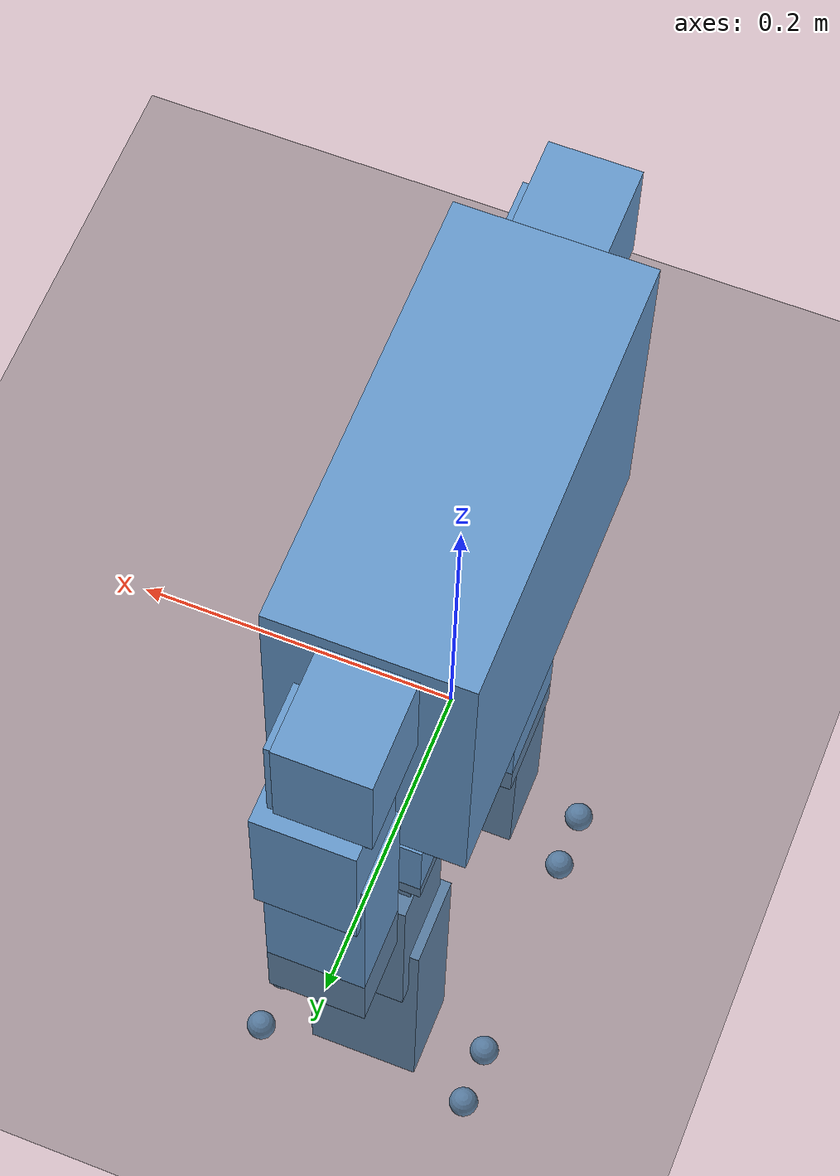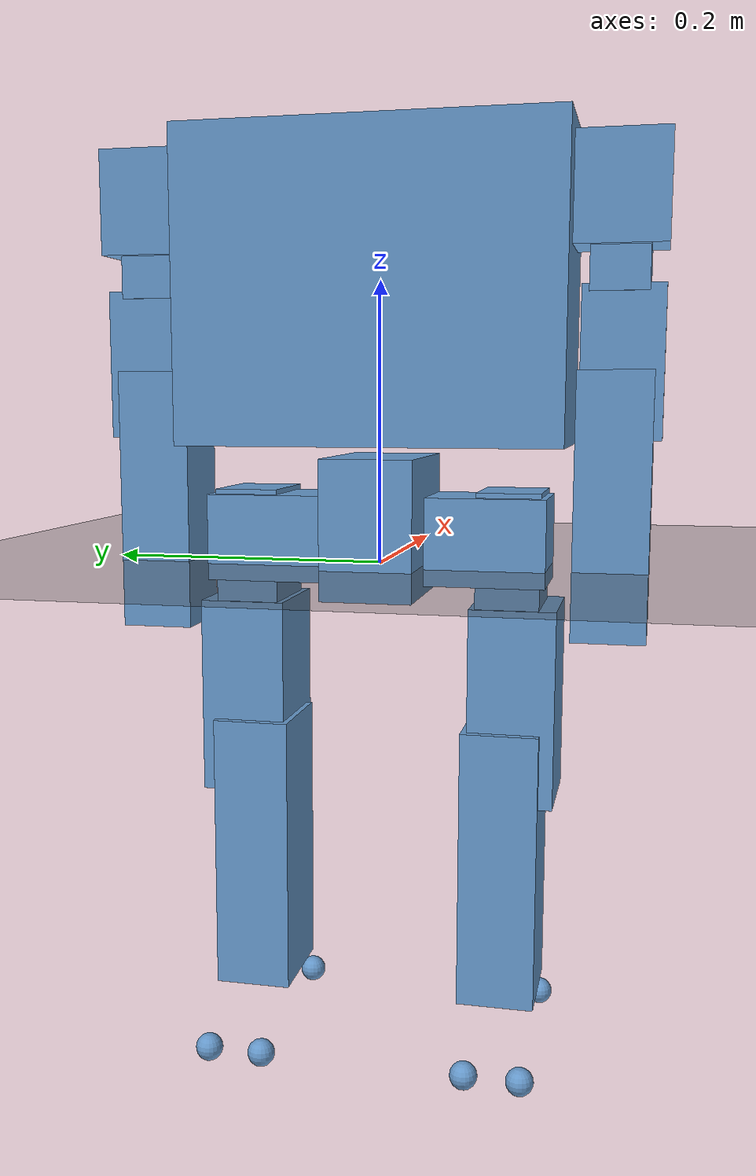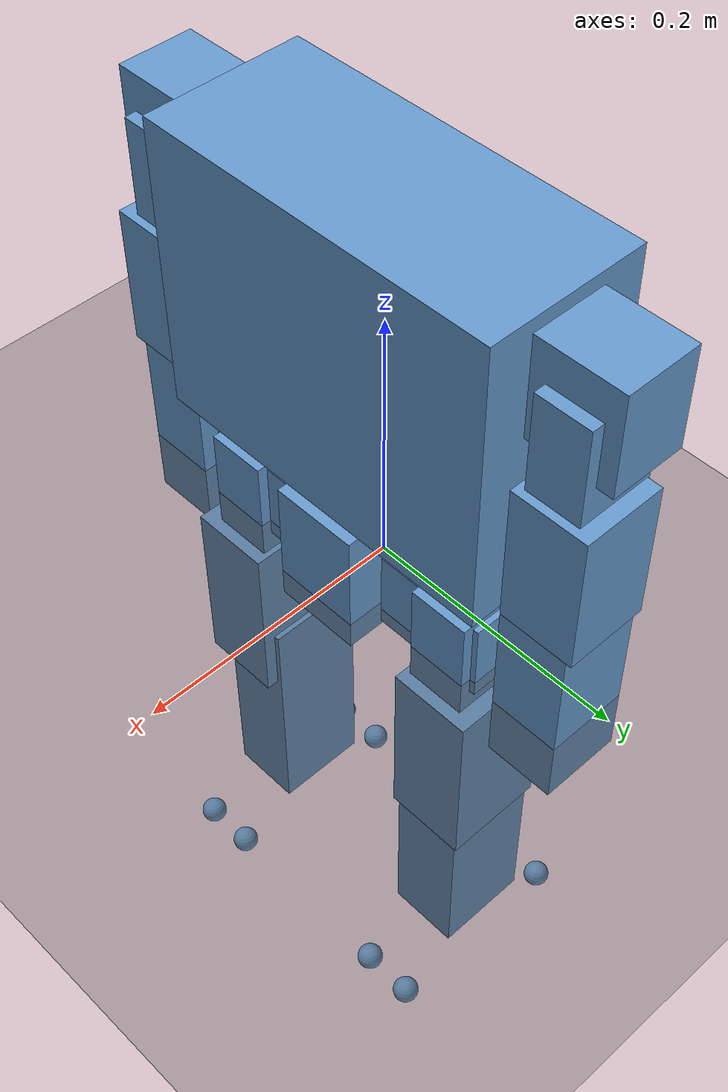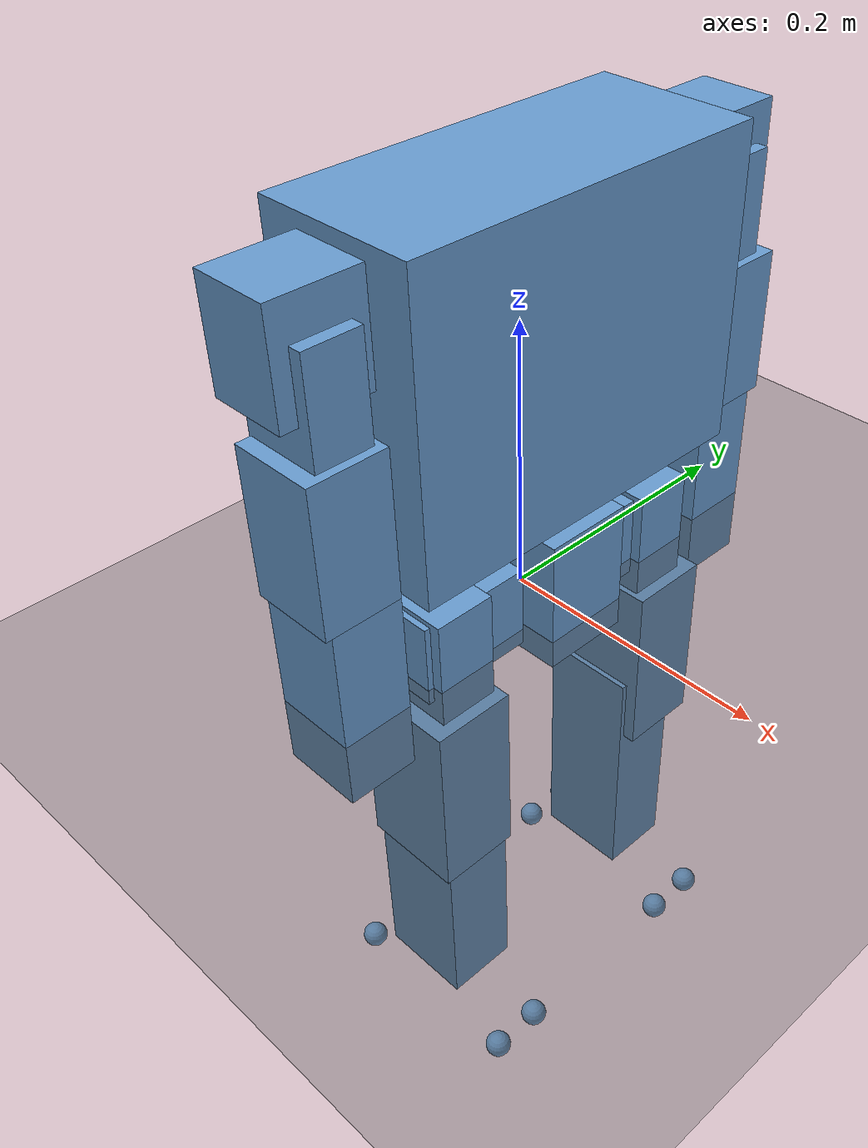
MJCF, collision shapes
<?xml version='1.0' encoding='utf-8'?>
<mujoco model="edu3_nqj13_trainable_fullbody">
  <compiler angle="radian" meshdir="../meshes" autolimits="true" />
  <option timestep="0.005" gravity="0 0 -9.81" integrator="implicitfast" />
  <default>
    <joint damping="0" frictionloss="0" />
    <geom condim="3" friction="1 0.005 0.0001" />
  </default>
  <asset>
    <mesh name="base_link" file="base_link.STL" />
    <mesh name="link_3" file="link_3.STL" />
    <mesh name="link_2" file="link_2.STL" />
    <mesh name="link_1" file="link_1.STL" />
    <mesh name="link_4" file="link_4.STL" />
    <mesh name="link_5" file="link_5.STL" />
    <mesh name="link_6" file="link_6.STL" />
    <mesh name="link_9" file="link_9.STL" />
    <mesh name="link_8" file="link_8.STL" />
    <mesh name="link_7" file="link_7.STL" />
    <mesh name="link_10" file="link_10.STL" />
    <mesh name="link_11" file="link_11.STL" />
    <mesh name="link_12" file="link_12.STL" />
    <mesh name="link_13" file="link_13.STL" />
    <mesh name="link_14" file="link_14.STL" />
    <mesh name="link_15" file="link_15.STL" />
    <mesh name="link_16" file="link_16.STL" />
    <mesh name="link_17" file="link_17.STL" />
    <mesh name="link_19" file="link_19.STL" />
    <mesh name="link_20" file="link_20.STL" />
    <mesh name="link_21" file="link_21.STL" />
    <mesh name="link_22" file="link_22.STL" />
  </asset>
  <worldbody>
    <geom name="floor" type="plane" size="0 0 0.1" rgba="0.25 0.25 0.25 1" />
    <body name="base_link">
      <freejoint name="root" />
      <inertial pos="0.00760964037396047 -7.38329555537154E-06 0.0345123249482792" mass="1.53273656" fullinertia="0.000786271655 0.00105952822 0.000982087965 -4.62633328e-07 -8.19527123e-06 1.89974303e-07" />
      <geom name="base_link_visual_0" type="mesh" mesh="base_link" pos="0 0 0" euler="0 0 0" rgba="0.698039215686274 0.698039215686274 0.698039215686274 1" contype="0" conaffinity="0" group="2" density="0" />
      <geom type="box" size="0.056874 0.03292595 0.04962725" name="base_link_collision_0" pos="0.00559697 0 0.0271459" euler="0 0 0" rgba="0.4 0.6 0.8 0.35" density="0" />
      <body name="left_thigh_pitch_link" pos="0.00989854492743848 0.0597021249576227 0.0159306295413518" euler="0 0 0">
        <joint name="left_thigh_pitch_joint" type="hinge" axis="0 1 0" range="-1.5708 0.7854" limited="true" damping="0.0432" frictionloss="0.51" armature="0.02649" />
        <inertial pos="-0.00843782347182893 0.0328926691629381 0.00361005619032295" mass="0.288585022" fullinertia="0.000123865007 0.000117838374 0.000118494954 -1.43843265e-08 1.52960364e-07 -5.70370099e-07" />
        <geom name="left_thigh_pitch_link_visual_0" type="mesh" mesh="link_3" pos="0 0 0" euler="0 0 0" rgba="0.698039215686274 0.698039215686274 0.698039215686274 1" contype="0" conaffinity="0" group="2" density="0" />
        <geom type="box" size="0.03297875 0.042537 0.031026" name="left_thigh_pitch_link_collision_0" pos="-0.00447874 0.0197609 0.0025259" euler="0 0 0" rgba="0.4 0.6 0.8 0.35" density="0" />
        <body name="left_thigh_roll_link" pos="0.0125355067767748 0.0352877943474121 0.00354346494214519" euler="0 0 0">
          <joint name="left_thigh_roll_joint" type="hinge" axis="1 0 0" range="-0.3491 0.7854" limited="true" damping="0.0306" frictionloss="0.146" armature="0.0067367" />
          <inertial pos="0.0035499736000169 1.51972049300397E-06 -0.0201386941881133" mass="0.0774555066" fullinertia="5.45846299e-05 5.80430999e-05 2.40033186e-05 2.49818496e-08 -1.41089706e-05 3.29258479e-08" />
          <geom name="left_thigh_roll_link_visual_0" type="mesh" mesh="link_2" pos="0 0 0" euler="0 0 0" rgba="0.698039215686274 0.698039215686274 0.698039215686274 1" contype="0" conaffinity="0" group="2" density="0" />
          <geom type="box" size="0.0332156 0.0226388 0.043488" name="left_thigh_roll_link_collision_0" pos="-0.00938441 1.63363e-05 -0.0100035" euler="0 0 0" rgba="0.4 0.6 0.8 0.35" density="0" />
          <body name="left_thigh_yaw_link" pos="-0.00947289704843874 1.75311637793385E-05 -0.0535250406284826" euler="0 0 0">
            <joint name="left_thigh_yaw_joint" type="hinge" axis="0 0 1" range="-0.7854 0.7854" limited="true" damping="0.0306" frictionloss="0.146" armature="0.0067367" />
            <inertial pos="0.00318389206627413 0.00443056997990021 -0.0359877141881675" mass="0.393285022" fullinertia="0.000223811793 0.000261778705 0.000185336321 -8.36115684e-07 2.30408417e-05 2.44017341e-06" />
            <geom name="left_thigh_yaw_link_visual_0" type="mesh" mesh="link_1" pos="0 0 0" euler="0 0 0" rgba="0.698039215686274 0.698039215686274 0.698039215686274 1" contype="0" conaffinity="0" group="2" density="0" />
            <geom type="box" size="0.0386704 0.031 0.071432" name="left_thigh_yaw_link_collision_0" pos="0.00406517 0.00399255 -0.0663985" euler="0 0 0" rgba="0.4 0.6 0.8 0.35" density="0" />
            <body name="left_knee_link" pos="-7.79454471497507E-05 0.0199862866747287 -0.11524549008002" euler="0 0 0">
              <joint name="left_knee_joint" type="hinge" axis="0 1 0" range="0 1.2217" limited="true" damping="0.0432" frictionloss="0.51" armature="0.02649" />
              <inertial pos="-0.00864377982017532 -0.0199349999347832 -0.054388286132085" mass="0.914740529" fullinertia="0.000751798582 0.000811247205 0.000329812689 -4.16631848e-08 -3.22969367e-05 -1.85402653e-06" />
              <geom name="left_knee_link_visual_0" type="mesh" mesh="link_4" pos="0 0 0" euler="0 0 0" rgba="0.698039215686274 0.698039215686274 0.698039215686274 1" contype="0" conaffinity="0" group="2" density="0" />
              <geom type="box" size="0.0369747 0.028 0.1022485" name="left_knee_link_collision_0" pos="-0.003808 -0.0229937 -0.0709216" euler="0 0 0" rgba="0.4 0.6 0.8 0.35" density="0" />
              <body name="left_ankle_pitch_link" pos="-0.00830791449 -0.0199937364 -0.175852828" euler="0 0 0">
                <joint name="left_ankle_pitch_joint" type="hinge" axis="0 1 0" range="-0.4363 0.4363" limited="true" damping="0.0306" frictionloss="0.146" armature="0.0067367" />
                <inertial pos="0.01179517528 0.001336487017 0.04705858959" mass="0.120055507" fullinertia="9.99107457e-06 6.33527643e-06 1.00003383e-05 -1.07798706e-06 -3.36863846e-10 -7.19953024e-10" />
                <geom name="left_ankle_pitch_link_visual_0" type="mesh" mesh="link_5" pos="0.0116588173 -9.22009349e-08 0.0964972153" euler="0 0 0" rgba="0.698039215686274 0.698039215686274 0.698039215686274 1" contype="0" conaffinity="0" group="2" density="0" />
                <geom type="box" size="0.011 0.011 0.005" name="left_ankle_pitch_link_collision_0" pos="2.73226e-09 4.88693e-15 4.6694e-09" euler="0 0 0" rgba="0.4 0.6 0.8 0.35" density="0" />
                <body name="left_ankle_roll_link" pos="0 0 0" euler="0 0 0">
                  <joint name="left_ankle_roll_joint" type="hinge" axis="1 0 0" range="-0.4363 0.4363" limited="true" damping="0.0306" frictionloss="0.146" armature="0.0067367" />
                  <inertial pos="0.01982507622 0.001678690167 -0.001910008131" mass="0.517959031" fullinertia="0.000185725481 0.000638647599 0.000566297269 1.08397512e-06 4.44783201e-06 -7.36622932e-08" />
                  <geom name="left_ankle_roll_link_visual_0" type="mesh" mesh="link_6" pos="0.0115125745 -9.22009349e-08 0.0541032232" euler="0 0 0" rgba="0.698039215686274 0.698039215686274 0.698039215686274 1" contype="0" conaffinity="0" group="2" density="0" />
                  <geom type="sphere" size="0.0100" name="left_ankle_roll_link_collision_0" pos="-0.06770 -0.02000 -0.03287" euler="0 0 0" rgba="0.4 0.6 0.8 0.35" density="0" />
                  <geom type="sphere" size="0.0100" name="left_ankle_roll_link_collision_1" pos="-0.06770 0.02000 -0.03287" euler="0 0 0" rgba="0.4 0.6 0.8 0.35" density="0" />
                  <geom type="sphere" size="0.0100" name="left_ankle_roll_link_collision_2" pos="0.08230 -0.02000 -0.03287" euler="0 0 0" rgba="0.4 0.6 0.8 0.35" density="0" />
                  <geom type="sphere" size="0.0100" name="left_ankle_roll_link_collision_3" pos="0.08230 0.02000 -0.03287" euler="0 0 0" rgba="0.4 0.6 0.8 0.35" density="0" />
                </body>
              </body>
            </body>
          </body>
        </body>
      </body>
      <body name="right_thigh_pitch_link" pos="0.00989854492743848 -0.059702124957623 0.0159304166343469" euler="0 0 0">
        <joint name="right_thigh_pitch_joint" type="hinge" axis="0 -1 0" range="-0.7854 1.5708" limited="true" damping="0.0432" frictionloss="0.51" armature="0.02649" />
        <inertial pos="-0.0084378 -0.032893 0.0036103" mass="0.288585022" fullinertia="0.000123862208 0.000117836259 0.000118496776 1.43799664e-08 1.52955447e-07 5.7038196e-07" />
        <geom name="right_thigh_pitch_link_visual_0" type="mesh" mesh="link_9" pos="0 0 0" euler="0 0 0" rgba="0.69804 0.69804 0.69804 1" contype="0" conaffinity="0" group="2" density="0" />
        <geom type="box" size="0.03297875 0.042537 0.031026" name="right_thigh_pitch_link_collision_0" pos="-0.00447874 -0.0197609 0.00252611" euler="0 0 0" rgba="0.4 0.6 0.8 0.35" density="0" />
        <body name="right_thigh_roll_link" pos="0.0125355067767747 -0.0352877943474121 0.00354362752403797" euler="0 0 0">
          <joint name="right_thigh_roll_joint" type="hinge" axis="1 0 0" range="-0.7854 0.3491" limited="true" damping="0.0306" frictionloss="0.146" armature="0.0067367" />
          <inertial pos="0.00354997360001696 -3.11538260955278E-05 -0.0201386438630012" mass="0.0774555066" fullinertia="5.45846299e-05 5.80430999e-05 2.40033186e-05 2.49818496e-08 -1.41089706e-05 3.29258479e-08" />
          <geom name="right_thigh_roll_link_visual_0" type="mesh" mesh="link_8" pos="0 0 0" euler="0 0 0" rgba="0.698039215686274 0.698039215686274 0.698039215686274 1" contype="0" conaffinity="0" group="2" density="0" />
          <geom type="box" size="0.0332156 0.0226388 0.0434882" name="right_thigh_roll_link_collision_0" pos="-0.00938441 -1.63373e-05 -0.0100033" euler="0 0 0" rgba="0.4 0.6 0.8 0.35" density="0" />
          <body name="right_thigh_yaw_link" pos="-0.0094728467233265 -1.75311637788944E-05 -0.0535249903033703" euler="0 0 0">
            <joint name="right_thigh_yaw_joint" type="hinge" axis="0 0 1" range="-0.7854 0.7854" limited="true" damping="0.0306" frictionloss="0.146" armature="0.0067367" />
            <inertial pos="0.00318385893590419 -0.00443056699437959 -0.0359877149246606" mass="0.393285022" fullinertia="0.0002238118 0.000261778585 0.000185336208 8.36268529e-07 2.30409302e-05 -2.44017641e-06" />
            <geom name="right_thigh_yaw_link_visual_0" type="mesh" mesh="link_7" pos="0 0 0" euler="0 0 0" rgba="0.698039215686274 0.698039215686274 0.698039215686274 1" contype="0" conaffinity="0" group="2" density="0" />
            <geom type="box" size="0.0386704 0.031 0.071432" name="right_thigh_yaw_link_collision_0" pos="0.00406512 -0.00399255 -0.0663985" euler="0 0 0" rgba="0.4 0.6 0.8 0.35" density="0" />
            <body name="right_knee_link" pos="-7.79957722619323E-05 -0.0199862866747291 -0.115245702987025" euler="0 0 0">
              <joint name="right_knee_joint" type="hinge" axis="0 -1 0" range="-1.2217 0" limited="true" damping="0.0432" frictionloss="0.51" armature="0.02649" />
              <inertial pos="-0.00864378020679286 0.019934998797657 -0.0543923739122678" mass="0.914740529" fullinertia="0.000751798639 0.000811247227 0.000329812702 4.16889514e-08 -3.23100974e-05 1.87175952e-06" />
              <geom name="right_knee_link_visual_0" type="mesh" mesh="link_10" pos="0 0 0" euler="0 0 0" rgba="0.698039215686274 0.698039215686274 0.698039215686274 1" contype="0" conaffinity="0" group="2" density="0" />
              <geom type="box" size="0.0369747 0.028 0.1017485" name="right_knee_link_collision_0" pos="-0.003808 0.0229937 -0.0704214" euler="0 0 0" rgba="0.4 0.6 0.8 0.35" density="0" />
              <body name="right_ankle_pitch_link" pos="-0.00830791507 0.0199937364 -0.175852613" euler="0 0 0">
                <joint name="right_ankle_pitch_joint" type="hinge" axis="0 -1 0" range="-0.4363 0.4363" limited="true" damping="0.0306" frictionloss="0.146" armature="0.0067367" />
                <inertial pos="0.01229448534 -0.001336487017 0.04705777354" mass="0.120055507" fullinertia="9.99107457e-06 6.33527643e-06 1.00003383e-05 1.07798706e-06 3.36863846e-10 -7.36921084e-10" />
                <geom name="right_ankle_pitch_link_visual_0" type="mesh" mesh="link_11" pos="0.0116588178 9.22009349e-08 0.0964971632" euler="0 0 0" rgba="0.698039215686274 0.698039215686274 0.698039215686274 1" contype="0" conaffinity="0" group="2" density="0" />
                <geom type="box" size="0.011 0.011 0.005" name="right_ankle_pitch_link_collision_0" pos="2.15018e-09 -4.88693e-15 -3.17654e-09" euler="0 0 0" rgba="0.4 0.6 0.8 0.35" density="0" />
                <body name="right_ankle_roll_link" pos="0 0 0" euler="0 0 0">
                  <joint name="right_ankle_roll_joint" type="hinge" axis="1 0 0" range="-0.4363 0.4363" limited="true" damping="0.0306" frictionloss="0.146" armature="0.0067367" />
                  <inertial pos="0.02051234738 -0.001679167874 -0.001909831591" mass="0.517959031" fullinertia="0.000185725481 0.000638647599 0.000566297269 -9.54076541e-07 3.96818885e-06 7.04482894e-08" />
                  <geom name="right_ankle_roll_link_visual_0" type="mesh" mesh="link_12" pos="0.0115125751 9.22009349e-08 0.054103171" euler="0 0 0" rgba="0.698039215686274 0.698039215686274 0.698039215686274 1" contype="0" conaffinity="0" group="2" density="0" />
                  <geom type="sphere" size="0.0100" name="right_ankle_roll_link_collision_0" pos="-0.06770 -0.02000 -0.03287" euler="0 0 0" rgba="0.4 0.6 0.8 0.35" density="0" />
                  <geom type="sphere" size="0.0100" name="right_ankle_roll_link_collision_1" pos="-0.06770 0.02000 -0.03287" euler="0 0 0" rgba="0.4 0.6 0.8 0.35" density="0" />
                  <geom type="sphere" size="0.0100" name="right_ankle_roll_link_collision_2" pos="0.08230 -0.02000 -0.03287" euler="0 0 0" rgba="0.4 0.6 0.8 0.35" density="0" />
                  <geom type="sphere" size="0.0100" name="right_ankle_roll_link_collision_3" pos="0.08230 0.02000 -0.03287" euler="0 0 0" rgba="0.4 0.6 0.8 0.35" density="0" />
                </body>
              </body>
            </body>
          </body>
        </body>
      </body>
      <body name="torso_link" pos="0.015318282546733 2.35384338807959E-05 0.0973737165609704" euler="0 0 0">
        <joint name="torso_joint" type="hinge" axis="0 0 1" range="-0.7854 0.7854" limited="true" damping="0.0306" frictionloss="0.146" armature="0.0067367" />
        <inertial pos="-0.0093691 0.00010566 0.10634" mass="1.2531696" fullinertia="0.00190798824 0.00114117226 0.00124200739 -1.0904264e-09 1.67498874e-06 -4.62425212e-09" />
        <geom name="torso_link_visual_0" type="mesh" mesh="link_13" pos="0 0 0" euler="0 0 0" rgba="0.69804 0.69804 0.69804 1" contype="0" conaffinity="0" group="2" density="0" />
        <geom type="box" size="0.0588405 0.135 0.10835" name="torso_link_collision_0" pos="-0.0145744 -2.35364e-05 0.0961198" euler="0 0 0" rgba="0.4 0.6 0.8 0.35" density="0" />
        <body name="left_arm_pitch_link" pos="-0.0149058076090497 0.129974369373198 0.147073218666384" euler="0 0 0">
          <joint name="left_arm_pitch_joint" type="hinge" axis="0 1 0" range="-2.3562 0.7854" limited="true" damping="0.0306" frictionloss="0.146" armature="0.0067367" />
          <inertial pos="0.00127325400941826 0.0348838996696846 0.00242032969427075" mass="0.287629515" fullinertia="0.000136755623 0.000128634534 0.000117680687 5.88323984e-08 1.02292139e-06 5.0969185e-06" />
          <geom name="left_arm_pitch_link_visual_0" type="mesh" mesh="link_14" pos="0 0 0" euler="0 0 0" rgba="0.698039215686274 0.698039215686274 0.698039215686274 1" contype="0" conaffinity="0" group="2" density="0" />
          <geom type="box" size="0.0275 0.055395 0.0365" name="left_arm_pitch_link_collision_0" pos="-8.79914e-06 0.012795 0.0107919" euler="0 0 0" rgba="0.4 0.6 0.8 0.35" density="0" />
          <body name="left_arm_roll_link" pos="0.0224925479978645 0.0362230948944335 0" euler="0 0 0">
            <joint name="left_arm_roll_joint" type="hinge" axis="1 0 0" range="0 2.3562" limited="true" damping="0.0306" frictionloss="0.146" armature="0.0067367" />
            <inertial pos="-0.00107486798789262 1.52891264740829E-05 -0.0306371722462788" mass="0.0377555066" fullinertia="2.01030665e-05 2.23064821e-05 1.10792718e-05 1.06742283e-19 -5.50810015e-06 2.50215156e-19" />
            <geom name="left_arm_roll_link_visual_0" type="mesh" mesh="link_15" pos="0 0 0" euler="0 0 0" rgba="0.698039215686274 0.698039215686274 0.698039215686274 1" contype="0" conaffinity="0" group="2" density="0" />
            <geom type="box" size="0.02829935 0.0200076 0.03814005" name="left_arm_roll_link_collision_0" pos="-0.0143007 7.68062e-06 -0.0174421" euler="0 0 0" rgba="0.4 0.6 0.8 0.35" density="0" />
            <body name="left_arm_yaw_link" pos="-0.0118349542983585 0 -0.0555827532402544" euler="0 0 0">
              <joint name="left_arm_yaw_joint" type="hinge" axis="0 0 1" range="-0.7854 0.7854" limited="true" damping="0.0306" frictionloss="0.146" armature="0.0067367" />
              <inertial pos="-9.17340085932888E-05 0.00277475171521169 -0.0245142528441612" mass="0.284448018" fullinertia="0.000109915459 0.000123194077 0.000113866718 -3.27991652e-07 1.79297319e-07 1.33075453e-06" />
              <geom name="left_arm_yaw_link_visual_0" type="mesh" mesh="link_16" pos="0 0 0" euler="0 0 0" rgba="0.698039215686274 0.698039215686274 0.698039215686274 1" contype="0" conaffinity="0" group="2" density="0" />
              <geom type="box" size="0.0305238 0.028 0.052084" name="left_arm_yaw_link_collision_0" pos="0.00141296 0.00301127 -0.0470832" euler="0 0 0" rgba="0.4 0.6 0.8 0.35" density="0" />
              <body name="left_elbow_pitch_link" pos="-0.00044857368103466 -0.0175933374487529 -0.0717413307077011" euler="0 0 0">
                <joint name="left_elbow_pitch_joint" type="hinge" axis="0 -1 0" range="0 1.5708" limited="true" damping="0.0306" frictionloss="0.146" armature="0.0067367" />
                <inertial pos="-0.00042201930162257 0.0190323821424416 -0.0313813320193664" mass="0.32013326" fullinertia="0.000274357749 0.000283972768 0.000103152004 -2.66837336e-10 9.89823962e-06 2.02341226e-06" />
                <geom name="left_elbow_pitch_link_visual_0" type="mesh" mesh="link_17" pos="0 0 0" euler="0 0 0" rgba="0.698039215686274 0.698039215686274 0.698039215686274 1" contype="0" conaffinity="0" group="2" density="0" />
                <geom type="box" size="0.03032365 0.0259977 0.093584" name="left_elbow_pitch_link_collision_0" pos="-0.000533372 0.0166023 -0.0735841" euler="0 0 0" rgba="0.4 0.6 0.8 0.35" density="0" />
              </body>
            </body>
          </body>
        </body>
        <body name="right_arm_pitch_link" pos="-0.0149059905019061 -0.13002144624096 0.147073218666384" euler="0 0 0">
          <joint name="right_arm_pitch_joint" type="hinge" axis="0 -1 0" range="-0.7854 2.3562" limited="true" damping="0.0306" frictionloss="0.146" armature="0.0067367" />
          <inertial pos="0.00127343677039819 -0.0348838997910466 0.00242032978909157" mass="0.287629515" fullinertia="0.000136755623 0.000128634534 0.000117680688 -5.88330825e-08 1.0229217e-06 -5.09691816e-06" />
          <geom name="right_arm_pitch_link_visual_0" type="mesh" mesh="link_19" pos="0 0 0" euler="0 0 0" rgba="0.698039215686274 0.698039215686274 0.698039215686274 1" contype="0" conaffinity="0" group="2" density="0" />
          <geom type="box" size="0.0275 0.055395 0.0365" name="right_arm_pitch_link_collision_0" pos="-8.61567e-06 -0.012795 0.0107919" euler="0 0 0" rgba="0.4 0.6 0.8 0.35" density="0" />
          <body name="right_arm_roll_link" pos="0.0224927308907894 -0.0362230548849742 0" euler="0 0 0">
            <joint name="right_arm_roll_joint" type="hinge" axis="1 0 0" range="-2.3562 0" limited="true" damping="0.0306" frictionloss="0.146" armature="0.0067367" />
            <inertial pos="-0.00107486798796103 -1.53291359327873E-05 -0.0306372571659133" mass="0.0377555066" fullinertia="2.01030665e-05 2.23064821e-05 1.10792718e-05 9.79739107e-20 -5.50810015e-06 2.48591884e-19" />
            <geom name="right_arm_roll_link_visual_0" type="mesh" mesh="link_20" pos="0 0 0" euler="0 0 0" rgba="0.698039215686274 0.698039215686274 0.698039215686274 1" contype="0" conaffinity="0" group="2" density="0" />
            <geom type="box" size="0.02829935 0.0200076 0.03814005" name="right_arm_roll_link_collision_0" pos="-0.0143007 -7.71973e-06 -0.0174421" euler="0 0 0" rgba="0.4 0.6 0.8 0.35" density="0" />
            <body name="right_arm_yaw_link" pos="-0.0118350392180613 0 -0.0555828381598206" euler="0 0 0">
              <joint name="right_arm_yaw_joint" type="hinge" axis="0 0 1" range="-0.7854 0.7854" limited="true" damping="0.0306" frictionloss="0.146" armature="0.0067367" />
              <inertial pos="-9.16142884914359E-05 -0.0027747916751163 -0.0245142532530901" mass="0.284448018" fullinertia="0.000109915462 0.000123194086 0.000113866716 3.27968184e-07 1.79315086e-07 -1.33073352e-06" />
              <geom name="right_arm_yaw_link_visual_0" type="mesh" mesh="link_21" pos="0 0 0" euler="0 0 0" rgba="0.698039215686274 0.698039215686274 0.698039215686274 1" contype="0" conaffinity="0" group="2" density="0" />
              <geom type="box" size="0.0305238 0.028 0.052084" name="right_arm_yaw_link_collision_0" pos="0.00141305 -0.00301131 -0.0470832" euler="0 0 0" rgba="0.4 0.6 0.8 0.35" density="0" />
              <body name="right_elbow_pitch_link" pos="-0.0004484038417659 0.017593297439362 -0.0717412906983095" euler="0 0 0">
                <joint name="right_elbow_pitch_joint" type="hinge" axis="0 1 0" range="-1.5708 0" limited="true" damping="0.0306" frictionloss="0.146" armature="0.0067367" />
                <inertial pos="-0.000422104221256901 -0.01903028214537 -0.0313813720288262" mass="0.32013326" fullinertia="0.000274357749 0.000283972768 0.000103152004 -2.66660535e-10 9.89823962e-06 -1.98170006e-06" />
                <geom name="right_elbow_pitch_link_visual_0" type="mesh" mesh="link_22" pos="0 0 0" euler="0 0 0" rgba="0.698039215686274 0.698039215686274 0.698039215686274 1" contype="0" conaffinity="0" group="2" density="0" />
                <geom type="box" size="0.03032365 0.0259977 0.093584" name="right_elbow_pitch_link_collision_0" pos="-0.000533456 -0.0166023 -0.0735841" euler="0 0 0" rgba="0.4 0.6 0.8 0.35" density="0" />
              </body>
            </body>
          </body>
        </body>
      </body>
    </body>
  </worldbody>
  <actuator>
    <motor name="left_thigh_pitch_joint_motor" joint="left_thigh_pitch_joint" gear="1" ctrllimited="true" ctrlrange="-50 50" forcelimited="true" forcerange="-50 50" />
    <motor name="left_thigh_roll_joint_motor" joint="left_thigh_roll_joint" gear="1" ctrllimited="true" ctrlrange="-20 20" forcelimited="true" forcerange="-20 20" />
    <motor name="left_thigh_yaw_joint_motor" joint="left_thigh_yaw_joint" gear="1" ctrllimited="true" ctrlrange="-20 20" forcelimited="true" forcerange="-20 20" />
    <motor name="left_knee_joint_motor" joint="left_knee_joint" gear="1" ctrllimited="true" ctrlrange="-50 50" forcelimited="true" forcerange="-50 50" />
    <motor name="left_ankle_pitch_joint_motor" joint="left_ankle_pitch_joint" gear="1" ctrllimited="true" ctrlrange="-40 40" forcelimited="true" forcerange="-40 40" />
    <motor name="left_ankle_roll_joint_motor" joint="left_ankle_roll_joint" gear="1" ctrllimited="true" ctrlrange="-40 40" forcelimited="true" forcerange="-40 40" />
    <motor name="right_thigh_pitch_joint_motor" joint="right_thigh_pitch_joint" gear="1" ctrllimited="true" ctrlrange="-50 50" forcelimited="true" forcerange="-50 50" />
    <motor name="right_thigh_roll_joint_motor" joint="right_thigh_roll_joint" gear="1" ctrllimited="true" ctrlrange="-20 20" forcelimited="true" forcerange="-20 20" />
    <motor name="right_thigh_yaw_joint_motor" joint="right_thigh_yaw_joint" gear="1" ctrllimited="true" ctrlrange="-20 20" forcelimited="true" forcerange="-20 20" />
    <motor name="right_knee_joint_motor" joint="right_knee_joint" gear="1" ctrllimited="true" ctrlrange="-50 50" forcelimited="true" forcerange="-50 50" />
    <motor name="right_ankle_pitch_joint_motor" joint="right_ankle_pitch_joint" gear="1" ctrllimited="true" ctrlrange="-40 40" forcelimited="true" forcerange="-40 40" />
    <motor name="right_ankle_roll_joint_motor" joint="right_ankle_roll_joint" gear="1" ctrllimited="true" ctrlrange="-40 40" forcelimited="true" forcerange="-40 40" />
    <motor name="torso_joint_motor" joint="torso_joint" gear="1" ctrllimited="true" ctrlrange="-20 20" forcelimited="true" forcerange="-20 20" />
    <motor name="left_arm_pitch_joint_motor" joint="left_arm_pitch_joint" gear="1" ctrllimited="true" ctrlrange="-10 10" forcelimited="true" forcerange="-10 10" />
    <motor name="left_arm_roll_joint_motor" joint="left_arm_roll_joint" gear="1" ctrllimited="true" ctrlrange="-10 10" forcelimited="true" forcerange="-10 10" />
    <motor name="left_arm_yaw_joint_motor" joint="left_arm_yaw_joint" gear="1" ctrllimited="true" ctrlrange="-10 10" forcelimited="true" forcerange="-10 10" />
    <motor name="left_elbow_pitch_joint_motor" joint="left_elbow_pitch_joint" gear="1" ctrllimited="true" ctrlrange="-10 10" forcelimited="true" forcerange="-10 10" />
    <motor name="right_arm_pitch_joint_motor" joint="right_arm_pitch_joint" gear="1" ctrllimited="true" ctrlrange="-10 10" forcelimited="true" forcerange="-10 10" />
    <motor name="right_arm_roll_joint_motor" joint="right_arm_roll_joint" gear="1" ctrllimited="true" ctrlrange="-10 10" forcelimited="true" forcerange="-10 10" />
    <motor name="right_arm_yaw_joint_motor" joint="right_arm_yaw_joint" gear="1" ctrllimited="true" ctrlrange="-10 10" forcelimited="true" forcerange="-10 10" />
    <motor name="right_elbow_pitch_joint_motor" joint="right_elbow_pitch_joint" gear="1" ctrllimited="true" ctrlrange="-10 10" forcelimited="true" forcerange="-10 10" />
  </actuator>
</mujoco>
